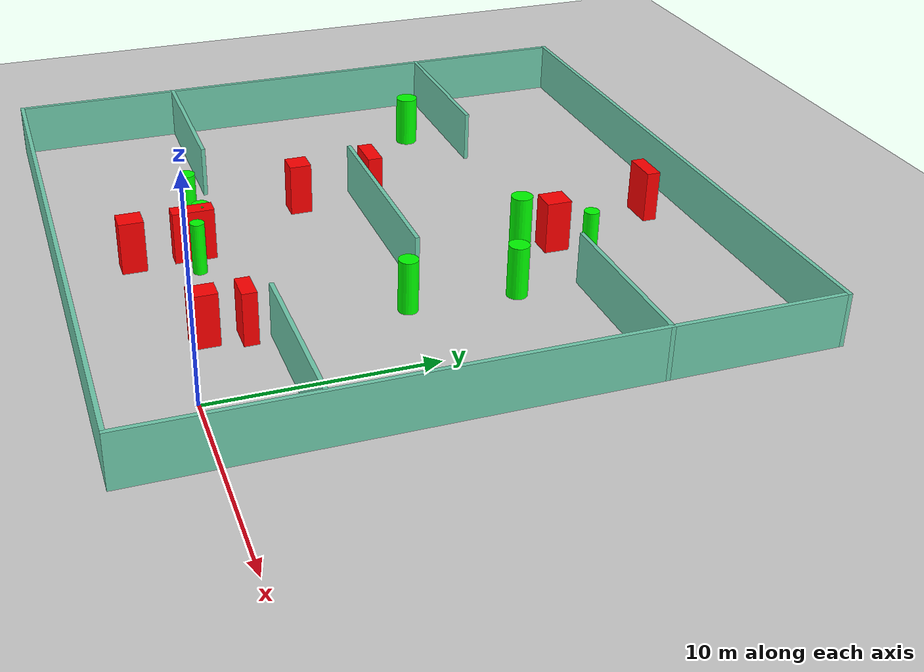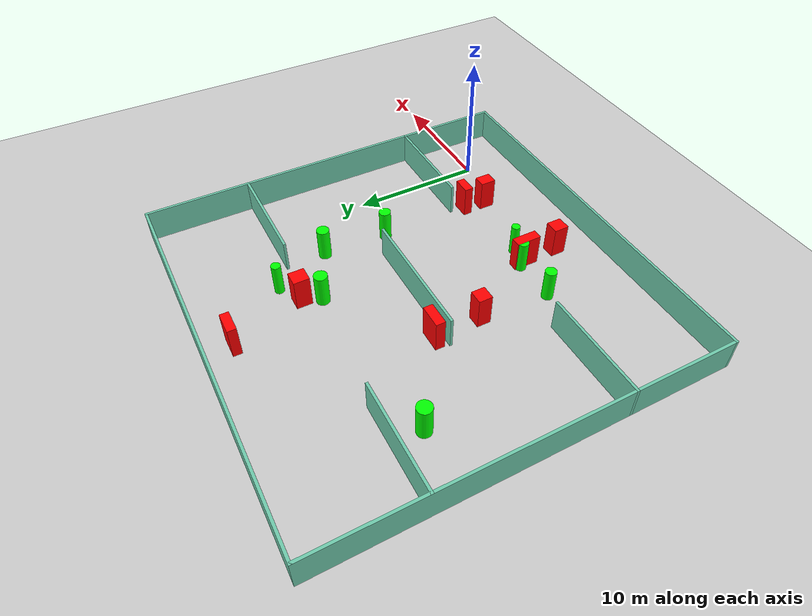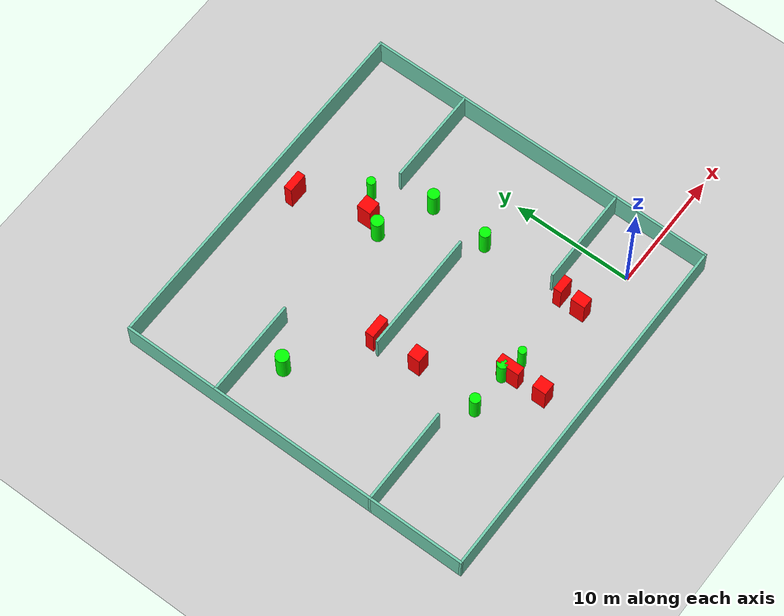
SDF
<sdf version="1.7">
 <world name="default">
  <light name="sun" type="directional">
   <pose>0 0 10 0 -0 0</pose>
   <diffuse>0.8 0.8 0.8 1</diffuse>
   <specular>0.2 0.2 0.2 1</specular>
   <attenuation>
    <range>1000</range>
    <constant>0.9</constant>
    <linear>0.01</linear>
    <quadratic>0.001</quadratic>
   </attenuation>
   <direction>-0.5 0.1 -0.9</direction>
   <spot><inner_angle>0</inner_angle><outer_angle>0</outer_angle><falloff>0</falloff></spot>
  </light>
  <model name="ground_plane">
   <static>1</static>
   <link name="link">
    <collision name="collision">
     <geometry><plane><normal>0 0 1</normal><size>100 100</size></plane></geometry>
     <surface>
      <contact><collide_bitmask>65535</collide_bitmask></contact>
      <friction><ode><mu>100</mu><mu2>50</mu2></ode></friction>
     </surface>
    </collision>
    <visual name="visual">
     <cast_shadows>0</cast_shadows>
     <geometry><plane><normal>0 0 1</normal><size>100 100</size></plane></geometry>
     <material>
      <script><uri>file://media/materials/scripts/gazebo.material</uri><name>Gazebo/Grey</name></script>
     </material>
    </visual>
   </link>
  </model>
  <gravity>0 0 -9.8</gravity>
  <magnetic_field>6e-06 2.3e-05 -4.2e-05</magnetic_field>
  <atmosphere type="adiabatic"/>
  <physics type="ode">
   <max_step_size>0.001</max_step_size>
   <real_time_factor>1</real_time_factor>
   <real_time_update_rate>1000</real_time_update_rate>
  </physics>
  <scene><ambient>0.4 0.4 0.4 1</ambient><background>0.7 0.7 0.7 1</background><shadows>1</shadows></scene>
  <spherical_coordinates>
   <surface_model>EARTH_WGS84</surface_model>
   <latitude_deg>0</latitude_deg>
   <longitude_deg>0</longitude_deg>
   <elevation>0</elevation>
   <heading_deg>0</heading_deg>
  </spherical_coordinates>
  <model name="my_base_walls">
   <link name="Wall_10">
    <collision name="Wall_10_Collision">
     <geometry><box><size>8.2 0.2 2.5</size></box></geometry>
     <pose>0 0 1.25 0 -0 0</pose>
    </collision>
    <visual name="Wall_10_Visual">
     <pose>0 0 1.25 0 -0 0</pose>
     <geometry><box><size>8.2 0.2 2.5</size></box></geometry>
     <material>
      <script><uri>file://media/materials/scripts/gazebo.material</uri><name>Gazebo/Grey</name></script>
      <ambient>0.435294 0.796078 0.67451 1</ambient>
     </material>
     <meta><layer>0</layer></meta>
    </visual>
    <pose>-11 -7 0 0 -0 0</pose>
   </link>
   <link name="Wall_12">
    <collision name="Wall_12_Collision">
     <geometry><box><size>8.2 0.2 2.5</size></box></geometry>
     <pose>0 0 1.25 0 -0 0</pose>
    </collision>
    <visual name="Wall_12_Visual">
     <pose>0 0 1.25 0 -0 0</pose>
     <geometry><box><size>8.2 0.2 2.5</size></box></geometry>
     <material>
      <script><uri>file://media/materials/scripts/gazebo.material</uri><name>Gazebo/Grey</name></script>
      <ambient>0.435294 0.796078 0.67451 1</ambient>
     </material>
     <meta><layer>0</layer></meta>
    </visual>
    <pose>-11 7 0 0 -0 0</pose>
   </link>
   <link name="Wall_14">
    <collision name="Wall_14_Collision">
     <geometry><box><size>8.2 0.2 2.5</size></box></geometry>
     <pose>0 0 1.25 0 -0 0</pose>
    </collision>
    <visual name="Wall_14_Visual">
     <pose>0 0 1.25 0 -0 0</pose>
     <geometry><box><size>8.2 0.2 2.5</size></box></geometry>
     <material>
      <script><uri>file://media/materials/scripts/gazebo.material</uri><name>Gazebo/Grey</name></script>
      <ambient>0.435294 0.796078 0.67451 1</ambient>
     </material>
     <meta><layer>0</layer></meta>
    </visual>
    <pose>11 7 0 0 -0 3.14159</pose>
   </link>
   <link name="Wall_16">
    <collision name="Wall_16_Collision">
     <geometry><box><size>10.2 0.2 2.5</size></box></geometry>
     <pose>0 0 1.25 0 -0 0</pose>
    </collision>
    <visual name="Wall_16_Visual">
     <pose>0 0 1.25 0 -0 0</pose>
     <geometry><box><size>10.2 0.2 2.5</size></box></geometry>
     <material>
      <script><uri>file://media/materials/scripts/gazebo.material</uri><name>Gazebo/Grey</name></script>
      <ambient>0.435294 0.796078 0.67451 1</ambient>
     </material>
     <meta><layer>0</layer></meta>
    </visual>
    <pose>0 0 0 0 -0 3.14159</pose>
   </link>
   <link name="Wall_2">
    <collision name="Wall_2_Collision">
     <geometry><box><size>30.2 0.2 2.5</size></box></geometry>
     <pose>0 0 1.25 0 -0 0</pose>
    </collision>
    <visual name="Wall_2_Visual">
     <pose>0 0 1.25 0 -0 0</pose>
     <geometry><box><size>30.2 0.2 2.5</size></box></geometry>
     <material>
      <script><uri>file://media/materials/scripts/gazebo.material</uri><name>Gazebo/Grey</name></script>
      <ambient>0.435294 0.796078 0.67451 1</ambient>
     </material>
     <meta><layer>0</layer></meta>
    </visual>
    <pose>0 -15 0 0 -0 3.14159</pose>
   </link>
   <link name="Wall_3">
    <collision name="Wall_3_Collision">
     <geometry><box><size>30.2 0.2 2.5</size></box></geometry>
     <pose>0 0 1.25 0 -0 0</pose>
    </collision>
    <visual name="Wall_3_Visual">
     <pose>0 0 1.25 0 -0 0</pose>
     <geometry><box><size>30.2 0.2 2.5</size></box></geometry>
     <material>
      <script><uri>file://media/materials/scripts/gazebo.material</uri><name>Gazebo/Grey</name></script>
      <ambient>0.435294 0.796078 0.67451 1</ambient>
     </material>
     <meta><layer>0</layer></meta>
    </visual>
    <pose>-15 0 0 0 -0 1.5708</pose>
   </link>
   <link name="Wall_4">
    <collision name="Wall_4_Collision">
     <geometry><box><size>30.2 0.2 2.5</size></box></geometry>
     <pose>0 0 1.25 0 -0 0</pose>
    </collision>
    <visual name="Wall_4_Visual">
     <pose>0 0 1.25 0 -0 0</pose>
     <geometry><box><size>30.2 0.2 2.5</size></box></geometry>
     <material>
      <script><uri>file://media/materials/scripts/gazebo.material</uri><name>Gazebo/Grey</name></script>
      <ambient>0.435294 0.796078 0.67451 1</ambient>
     </material>
     <meta><layer>0</layer></meta>
    </visual>
    <pose>0 15 0 0 -0 0</pose>
   </link>
   <link name="Wall_6">
    <collision name="Wall_6_Collision">
     <geometry><box><size>30.2 0.2 2.5</size></box></geometry>
     <pose>0 0 1.25 0 -0 0</pose>
    </collision>
    <visual name="Wall_6_Visual">
     <pose>0 0 1.25 0 -0 0</pose>
     <geometry><box><size>30.2 0.2 2.5</size></box></geometry>
     <material>
      <script><uri>file://media/materials/scripts/gazebo.material</uri><name>Gazebo/Grey</name></script>
      <ambient>0.435294 0.796078 0.67451 1</ambient>
     </material>
     <meta><layer>0</layer></meta>
    </visual>
    <pose>15 0 0 0 -0 1.5708</pose>
   </link>
   <link name="Wall_8">
    <collision name="Wall_8_Collision">
     <geometry><box><size>8.2 0.2 2.5</size></box></geometry>
     <pose>0 0 1.25 0 -0 0</pose>
    </collision>
    <visual name="Wall_8_Visual">
     <pose>0 0 1.25 0 -0 0</pose>
     <geometry><box><size>8.2 0.2 2.5</size></box></geometry>
     <material>
      <script><uri>file://media/materials/scripts/gazebo.material</uri><name>Gazebo/Grey</name></script>
      <ambient>0.435294 0.796078 0.67451 1</ambient>
     </material>
     <meta><layer>0</layer></meta>
    </visual>
    <pose>11 -7 0 0 -0 3.14159</pose>
   </link>
   <static>1</static>
   <pose>-11 11 0 0 -0 0</pose>
  </model>
  <model name="cylinder1">
   <static>1</static>
   <link name="link">
    <inertial>
     <mass>1</mass>
     <inertia><ixx>0.5</ixx><ixy>0</ixy><ixz>0</ixz><iyy>0.5</iyy><iyz>0</iyz><izz>1</izz></inertia>
    </inertial>
    <collision name="collision">
     <geometry><cylinder><radius>0.3549554514279001</radius><length>2.5</length></cylinder></geometry>
    </collision>
    <visual name="visual">
     <geometry><cylinder><radius>0.3549554514279001</radius><length>2.5</length></cylinder></geometry>
     <material>
      <ambient>0 1 0 1</ambient>
      <diffuse>0 1 0 1</diffuse>
      <specular>0.1 0.1 0.1 1</specular>
      <emissive>0 0 0 0</emissive>
     </material>
    </visual>
   </link>
   <pose>-5.869324273908045 19.337889398372347 1.25 0 0 0</pose>
  </model>
  <model name="cylinder2">
   <static>1</static>
   <link name="link">
    <inertial>
     <mass>1</mass>
     <inertia><ixx>0.5</ixx><ixy>0</ixy><ixz>0</ixz><iyy>0.5</iyy><iyz>0</iyz><izz>1</izz></inertia>
    </inertial>
    <collision name="collision">
     <geometry><cylinder><radius>0.5095104289526461</radius><length>2.5</length></cylinder></geometry>
    </collision>
    <visual name="visual">
     <geometry><cylinder><radius>0.5095104289526461</radius><length>2.5</length></cylinder></geometry>
     <material>
      <ambient>0 1 0 1</ambient>
      <diffuse>0 1 0 1</diffuse>
      <specular>0.1 0.1 0.1 1</specular>
      <emissive>0 0 0 0</emissive>
     </material>
    </visual>
   </link>
   <pose>-8.240559618165857 16.945887661601606 1.25 0 0 0</pose>
  </model>
  <model name="cylinder3">
   <static>1</static>
   <link name="link">
    <inertial>
     <mass>1</mass>
     <inertia><ixx>0.5</ixx><ixy>0</ixy><ixz>0</ixz><iyy>0.5</iyy><iyz>0</iyz><izz>1</izz></inertia>
    </inertial>
    <collision name="collision">
     <geometry><cylinder><radius>0.42896990841731825</radius><length>2.5</length></cylinder></geometry>
    </collision>
    <visual name="visual">
     <geometry><cylinder><radius>0.42896990841731825</radius><length>2.5</length></cylinder></geometry>
     <material>
      <ambient>0 1 0 1</ambient>
      <diffuse>0 1 0 1</diffuse>
      <specular>0.1 0.1 0.1 1</specular>
      <emissive>0 0 0 0</emissive>
     </material>
    </visual>
   </link>
   <pose>-15.376546978872089 2.6473790218880797 1.25 0 0 0</pose>
  </model>
  <model name="cylinder4">
   <static>1</static>
   <link name="link">
    <inertial>
     <mass>1</mass>
     <inertia><ixx>0.5</ixx><ixy>0</ixy><ixz>0</ixz><iyy>0.5</iyy><iyz>0</iyz><izz>1</izz></inertia>
    </inertial>
    <collision name="collision">
     <geometry><cylinder><radius>0.5417052187571285</radius><length>2.5</length></cylinder></geometry>
    </collision>
    <visual name="visual">
     <geometry><cylinder><radius>0.5417052187571285</radius><length>2.5</length></cylinder></geometry>
     <material>
      <ambient>0 1 0 1</ambient>
      <diffuse>0 1 0 1</diffuse>
      <specular>0.1 0.1 0.1 1</specular>
      <emissive>0 0 0 0</emissive>
     </material>
    </visual>
   </link>
   <pose>-21.09399769328103 15.76263683051246 1.25 0 0 0</pose>
  </model>
  <model name="cylinder5">
   <static>1</static>
   <link name="link">
    <inertial>
     <mass>1</mass>
     <inertia><ixx>0.5</ixx><ixy>0</ixy><ixz>0</ixz><iyy>0.5</iyy><iyz>0</iyz><izz>1</izz></inertia>
    </inertial>
    <collision name="collision">
     <geometry><cylinder><radius>0.4186166412251584</radius><length>2.5</length></cylinder></geometry>
    </collision>
    <visual name="visual">
     <geometry><cylinder><radius>0.4186166412251584</radius><length>2.5</length></cylinder></geometry>
     <material>
      <ambient>0 1 0 1</ambient>
      <diffuse>0 1 0 1</diffuse>
      <specular>0.1 0.1 0.1 1</specular>
      <emissive>0 0 0 0</emissive>
     </material>
    </visual>
   </link>
   <pose>-12.030133227279602 2.679279717488475 1.25 0 0 0</pose>
  </model>
  <model name="cylinder6">
   <static>1</static>
   <link name="link">
    <inertial>
     <mass>1</mass>
     <inertia><ixx>0.5</ixx><ixy>0</ixy><ixz>0</ixz><iyy>0.5</iyy><iyz>0</iyz><izz>1</izz></inertia>
    </inertial>
    <collision name="collision">
     <geometry><cylinder><radius>0.4765749113957426</radius><length>2.5</length></cylinder></geometry>
    </collision>
    <visual name="visual">
     <geometry><cylinder><radius>0.4765749113957426</radius><length>2.5</length></cylinder></geometry>
     <material>
      <ambient>0 1 0 1</ambient>
      <diffuse>0 1 0 1</diffuse>
      <specular>0.1 0.1 0.1 1</specular>
      <emissive>0 0 0 0</emissive>
     </material>
    </visual>
   </link>
   <pose>-3.958069847481614 14.96919669482686 1.25 0 0 0</pose>
  </model>
  <model name="cylinder7">
   <static>1</static>
   <link name="link">
    <inertial>
     <mass>1</mass>
     <inertia><ixx>0.5</ixx><ixy>0</ixy><ixz>0</ixz><iyy>0.5</iyy><iyz>0</iyz><izz>1</izz></inertia>
    </inertial>
    <collision name="collision">
     <geometry><cylinder><radius>0.3298510050879257</radius><length>2.5</length></cylinder></geometry>
    </collision>
    <visual name="visual">
     <geometry><cylinder><radius>0.3298510050879257</radius><length>2.5</length></cylinder></geometry>
     <material>
      <ambient>0 1 0 1</ambient>
      <diffuse>0 1 0 1</diffuse>
      <specular>0.1 0.1 0.1 1</specular>
      <emissive>0 0 0 0</emissive>
     </material>
    </visual>
   </link>
   <pose>-10.289479583172842 2.169400621202378 1.25 0 0 0</pose>
  </model>
  <model name="cylinder8">
   <static>1</static>
   <link name="link">
    <inertial>
     <mass>1</mass>
     <inertia><ixx>0.5</ixx><ixy>0</ixy><ixz>0</ixz><iyy>0.5</iyy><iyz>0</iyz><izz>1</izz></inertia>
    </inertial>
    <collision name="collision">
     <geometry><cylinder><radius>0.4509143727749352</radius><length>2.5</length></cylinder></geometry>
    </collision>
    <visual name="visual">
     <geometry><cylinder><radius>0.4509143727749352</radius><length>2.5</length></cylinder></geometry>
     <material>
      <ambient>0 1 0 1</ambient>
      <diffuse>0 1 0 1</diffuse>
      <specular>0.1 0.1 0.1 1</specular>
      <emissive>0 0 0 0</emissive>
     </material>
    </visual>
   </link>
   <pose>-4.224131279493143 10.006861006396983 1.25 0 0 0</pose>
  </model>
  <model name="box1">
   <static>1</static>
   <link name="link">
    <inertial>
     <mass>1</mass>
     <inertia><ixx>0.083</ixx><ixy>0</ixy><ixz>0</ixz><iyy>0.083</iyy><iyz>0</iyz><izz>0.083</izz></inertia>
    </inertial>
    <collision name="collision">
     <geometry><box><size>1.7683425805929822 0.7161880114852089 2.5</size></box></geometry>
    </collision>
    <visual name="visual">
     <geometry><box><size>1.7683425805929822 0.7161880114852089 2.5</size></box></geometry>
     <material>
      <ambient>1 0 0 1</ambient>
      <diffuse>1 0 0 1</diffuse>
      <specular>0.1 0.1 0.1 1</specular>
      <emissive>0 0 0 0</emissive>
     </material>
    </visual>
    <sensor name="my_contact" type="contact">
     <contact><collision>box_collision</collision><topic>__default_topic__</topic></contact>
    </sensor>
   </link>
   <pose>-15.087577047887283 11.76012703228419 1.25 0 0 0</pose>
  </model>
  <model name="box2">
   <static>1</static>
   <link name="link">
    <inertial>
     <mass>1</mass>
     <inertia><ixx>0.083</ixx><ixy>0</ixy><ixz>0</ixz><iyy>0.083</iyy><iyz>0</iyz><izz>0.083</izz></inertia>
    </inertial>
    <collision name="collision">
     <geometry><box><size>0.7573807925358459 1.9368320034483715 2.5</size></box></geometry>
    </collision>
    <visual name="visual">
     <geometry><box><size>0.7573807925358459 1.9368320034483715 2.5</size></box></geometry>
     <material>
      <ambient>1 0 0 1</ambient>
      <diffuse>1 0 0 1</diffuse>
      <specular>0.1 0.1 0.1 1</specular>
      <emissive>0 0 0 0</emissive>
     </material>
    </visual>
    <sensor name="my_contact" type="contact">
     <contact><collision>box_collision</collision><topic>__default_topic__</topic></contact>
    </sensor>
   </link>
   <pose>-11.711669205539103 2.20697956198448 1.25 0 0 0</pose>
  </model>
  <model name="box3">
   <static>1</static>
   <link name="link">
    <inertial>
     <mass>1</mass>
     <inertia><ixx>0.083</ixx><ixy>0</ixy><ixz>0</ixz><iyy>0.083</iyy><iyz>0</iyz><izz>0.083</izz></inertia>
    </inertial>
    <collision name="collision">
     <geometry><box><size>1.675938168495959 0.6590844303665979 2.5</size></box></geometry>
    </collision>
    <visual name="visual">
     <geometry><box><size>1.675938168495959 0.6590844303665979 2.5</size></box></geometry>
     <material>
      <ambient>1 0 0 1</ambient>
      <diffuse>1 0 0 1</diffuse>
      <specular>0.1 0.1 0.1 1</specular>
      <emissive>0 0 0 0</emissive>
     </material>
    </visual>
    <sensor name="my_contact" type="contact">
     <contact><collision>box_collision</collision><topic>__default_topic__</topic></contact>
    </sensor>
   </link>
   <pose>-9.321458013745135 23.870654357627306 1.25 0 0 0</pose>
  </model>
  <model name="box4">
   <static>1</static>
   <link name="link">
    <inertial>
     <mass>1</mass>
     <inertia><ixx>0.083</ixx><ixy>0</ixy><ixz>0</ixz><iyy>0.083</iyy><iyz>0</iyz><izz>0.083</izz></inertia>
    </inertial>
    <collision name="collision">
     <geometry><box><size>1.0528846573020623 1.1459571211876 2.5</size></box></geometry>
    </collision>
    <visual name="visual">
     <geometry><box><size>1.0528846573020623 1.1459571211876 2.5</size></box></geometry>
     <material>
      <ambient>1 0 0 1</ambient>
      <diffuse>1 0 0 1</diffuse>
      <specular>0.1 0.1 0.1 1</specular>
      <emissive>0 0 0 0</emissive>
     </material>
    </visual>
    <sensor name="my_contact" type="contact">
     <contact><collision>box_collision</collision><topic>__default_topic__</topic></contact>
    </sensor>
   </link>
   <pose>-11.61420156657364 -0.6412428784187685 1.25 0 0 0</pose>
  </model>
  <model name="box5">
   <static>1</static>
   <link name="link">
    <inertial>
     <mass>1</mass>
     <inertia><ixx>0.083</ixx><ixy>0</ixy><ixz>0</ixz><iyy>0.083</iyy><iyz>0</iyz><izz>0.083</izz></inertia>
    </inertial>
    <collision name="collision">
     <geometry><box><size>1.1401060060881723 1.1882268063737174 2.5</size></box></geometry>
    </collision>
    <visual name="visual">
     <geometry><box><size>1.1401060060881723 1.1882268063737174 2.5</size></box></geometry>
     <material>
      <ambient>1 0 0 1</ambient>
      <diffuse>1 0 0 1</diffuse>
      <specular>0.1 0.1 0.1 1</specular>
      <emissive>0 0 0 0</emissive>
     </material>
    </visual>
    <sensor name="my_contact" type="contact">
     <contact><collision>box_collision</collision><topic>__default_topic__</topic></contact>
    </sensor>
   </link>
   <pose>-7.584448659634518 18.29426844563413 1.25 0 0 0</pose>
  </model>
  <model name="box6">
   <static>1</static>
   <link name="link">
    <inertial>
     <mass>1</mass>
     <inertia><ixx>0.083</ixx><ixy>0</ixy><ixz>0</ixz><iyy>0.083</iyy><iyz>0</iyz><izz>0.083</izz></inertia>
    </inertial>
    <collision name="collision">
     <geometry><box><size>1.3702864846938607 0.6692220130097865 2.5</size></box></geometry>
    </collision>
    <visual name="visual">
     <geometry><box><size>1.3702864846938607 0.6692220130097865 2.5</size></box></geometry>
     <material>
      <ambient>1 0 0 1</ambient>
      <diffuse>1 0 0 1</diffuse>
      <specular>0.1 0.1 0.1 1</specular>
      <emissive>0 0 0 0</emissive>
     </material>
    </visual>
    <sensor name="my_contact" type="contact">
     <contact><collision>box_collision</collision><topic>__default_topic__</topic></contact>
    </sensor>
   </link>
   <pose>-4.2148239950203426 2.9537064380561153 1.25 0 0 0</pose>
  </model>
  <model name="box7">
   <static>1</static>
   <link name="link">
    <inertial>
     <mass>1</mass>
     <inertia><ixx>0.083</ixx><ixy>0</ixy><ixz>0</ixz><iyy>0.083</iyy><iyz>0</iyz><izz>0.083</izz></inertia>
    </inertial>
    <collision name="collision">
     <geometry><box><size>1.0737950485476688 1.0470869446274658 2.5</size></box></geometry>
    </collision>
    <visual name="visual">
     <geometry><box><size>1.0737950485476688 1.0470869446274658 2.5</size></box></geometry>
     <material>
      <ambient>1 0 0 1</ambient>
      <diffuse>1 0 0 1</diffuse>
      <specular>0.1 0.1 0.1 1</specular>
      <emissive>0 0 0 0</emissive>
     </material>
    </visual>
    <sensor name="my_contact" type="contact">
     <contact><collision>box_collision</collision><topic>__default_topic__</topic></contact>
    </sensor>
   </link>
   <pose>-15.011848585650089 8.063641273301933 1.25 0 0 0</pose>
  </model>
  <model name="box8">
   <static>1</static>
   <link name="link">
    <inertial>
     <mass>1</mass>
     <inertia><ixx>0.083</ixx><ixy>0</ixy><ixz>0</ixz><iyy>0.083</iyy><iyz>0</iyz><izz>0.083</izz></inertia>
    </inertial>
    <collision name="collision">
     <geometry><box><size>0.9534895181532672 1.2056563303982877 2.5</size></box></geometry>
    </collision>
    <visual name="visual">
     <geometry><box><size>0.9534895181532672 1.2056563303982877 2.5</size></box></geometry>
     <material>
      <ambient>1 0 0 1</ambient>
      <diffuse>1 0 0 1</diffuse>
      <specular>0.1 0.1 0.1 1</specular>
      <emissive>0 0 0 0</emissive>
     </material>
    </visual>
    <sensor name="my_contact" type="contact">
     <contact><collision>box_collision</collision><topic>__default_topic__</topic></contact>
    </sensor>
   </link>
   <pose>-4.394972660606845 1.1563106233983094 1.25 0 0 0</pose>
  </model>
 </world>
</sdf>
